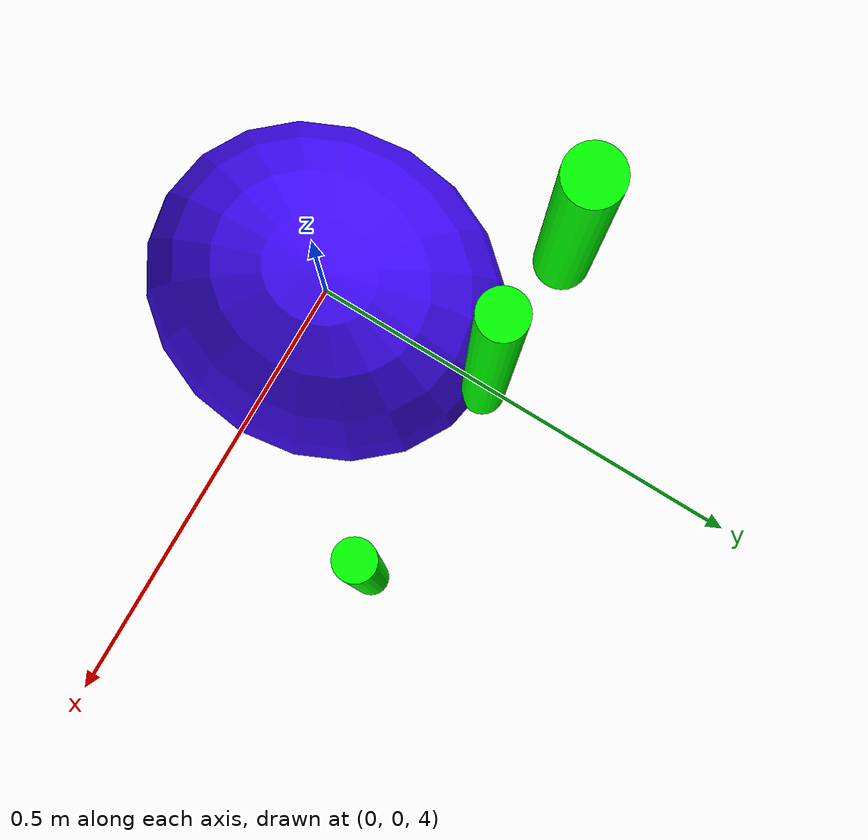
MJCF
<mujoco model="unnamed_model">
  <option timestep="0.01"/>
  <visual>
    <headlight ambient="0.5 0.5 0.5"/>
  </visual>
  <default>
    <default class="/"/>
  </default>
  <worldbody>
    <light name="//unnamed_light_0" class="/" pos="0 0 3" dir="0 0 -1" diffuse="0.5 0.5 0.5"/>
    <geom name="//unnamed_geom_0" class="/" type="plane" size="50 50 0.10000000000000001"/>
    <body name="//unnamed_body_0" pos="0 0 4">
      <joint name="//unnamed_joint_0" class="/" type="free"/>
      <geom name="//unnamed_geom_1" class="/" type="ellipsoid" size="0.17770735581815633 0.20229114497424505 0.23384740828911574" rgba="0.247 0.035000000000000003 0.97999999999999998 1" pos="0 0 0"/>
      <body name="limb0" pos="0.2398109715522837 0.20229114497424505 0.49569907090626575">
        <geom name="//unnamed_geom_2" class="/" type="cylinder" size="0.01919967624232893 0.49569907090626575" rgba="0 1 0 1"/>
        <joint name="0_joint" class="/" type="hinge" pos="0 0 -0.49569907090626575" axis="0 1 0" range="-45 45"/>
      </body>
      <body name="limb1" pos="-0.15990514199672734 0.20229114497424505 0.37128445912903607">
        <geom name="//unnamed_geom_3" class="/" type="cylinder" size="0.031233147574828389 0.37128445912903607" rgba="0 1 0 1"/>
        <joint name="1_joint" class="/" type="hinge" pos="0 0 -0.37128445912903607" axis="0 1 0" range="-45 45"/>
      </body>
      <body name="limb2" pos="0.0067028941982569534 0.20229114497424505 0.48664092346801802">
        <geom name="//unnamed_geom_4" class="/" type="cylinder" size="0.023748427557249874 0.48664092346801802" rgba="0 1 0 1"/>
        <joint name="2_joint" class="/" type="hinge" pos="0 0 -0.48664092346801802" axis="0 1 0" range="-45 45"/>
      </body>
    </body>
  </worldbody>
  <actuator>
    <motor name="motor_0_joint" class="/" ctrllimited="true" ctrlrange="-45 45" gear="10" joint="0_joint"/>
    <motor name="motor_1_joint" class="/" ctrllimited="true" ctrlrange="-45 45" gear="10" joint="1_joint"/>
    <motor name="motor_2_joint" class="/" ctrllimited="true" ctrlrange="-45 45" gear="10" joint="2_joint"/>
  </actuator>
</mujoco>
